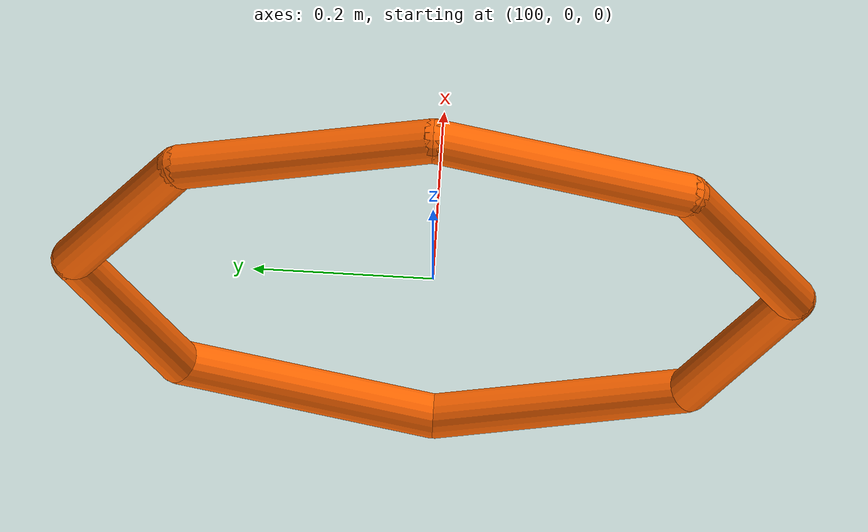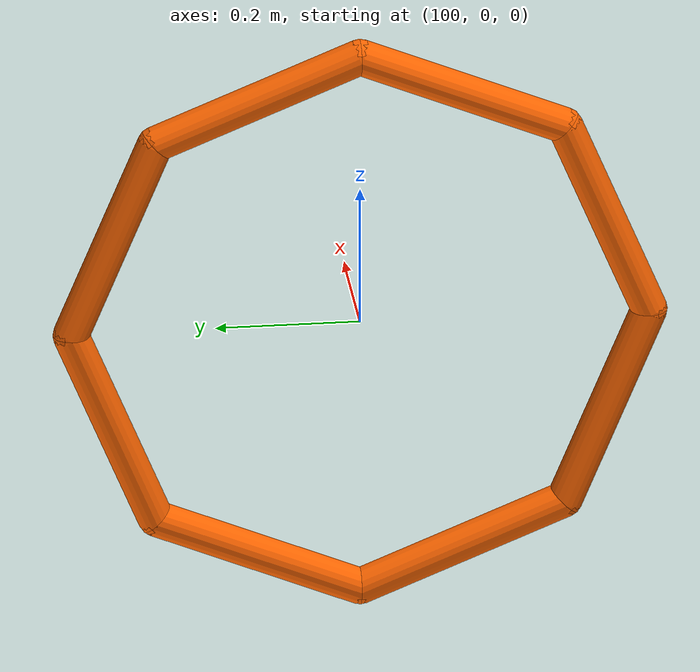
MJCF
<mujoco model="drone_quadrotor">
  <compiler angle="radian" autolimits="true"/>
  <option timestep="0.002" gravity="0 0 -9.81" integrator="RK4"/>

  <default>
    <geom type="capsule" rgba="0.18 0.18 0.22 1" condim="3"/>
    <site size="0.004" rgba="0.95 0.25 0.25 1"/>
    <motor ctrllimited="true" ctrlrange="0 6"/>
  </default>

  <worldbody>
    <light name="sun" pos="0 0 2.5" diffuse="1 1 1"/>
    <geom name="ground" type="plane" size="4 4 0.1" rgba="0.1 0.13 0.16 1"/>
    <camera name="track" mode="trackcom" pos="0 -2.0 1.2" xyaxes="1 0 0 0 0 1"/>

    <body name="gate_0" mocap="true" pos="100 0 0">
      <geom type="capsule" fromto="0 0.4000 0.0000 0 0.2828 0.2828" size="0.025" rgba="1.0 0.4 0.0 1" contype="0" conaffinity="0"/>
      <geom type="capsule" fromto="0 0.2828 0.2828 0 0.0000 0.4000" size="0.025" rgba="1.0 0.4 0.0 1" contype="0" conaffinity="0"/>
      <geom type="capsule" fromto="0 0.0000 0.4000 0 -0.2828 0.2828" size="0.025" rgba="1.0 0.4 0.0 1" contype="0" conaffinity="0"/>
      <geom type="capsule" fromto="0 -0.2828 0.2828 0 -0.4000 0.0000" size="0.025" rgba="1.0 0.4 0.0 1" contype="0" conaffinity="0"/>
      <geom type="capsule" fromto="0 -0.4000 0.0000 0 -0.2828 -0.2828" size="0.025" rgba="1.0 0.4 0.0 1" contype="0" conaffinity="0"/>
      <geom type="capsule" fromto="0 -0.2828 -0.2828 0 0.0000 -0.4000" size="0.025" rgba="1.0 0.4 0.0 1" contype="0" conaffinity="0"/>
      <geom type="capsule" fromto="0 0.0000 -0.4000 0 0.2828 -0.2828" size="0.025" rgba="1.0 0.4 0.0 1" contype="0" conaffinity="0"/>
      <geom type="capsule" fromto="0 0.2828 -0.2828 0 0.4000 0.0000" size="0.025" rgba="1.0 0.4 0.0 1" contype="0" conaffinity="0"/>
    </body>
    <body name="gate_1" mocap="true" pos="100 0 0">
      <geom type="capsule" fromto="0 0.4000 0.0000 0 0.2828 0.2828" size="0.025" rgba="1.0 0.4 0.0 1" contype="0" conaffinity="0"/>
      <geom type="capsule" fromto="0 0.2828 0.2828 0 0.0000 0.4000" size="0.025" rgba="1.0 0.4 0.0 1" contype="0" conaffinity="0"/>
      <geom type="capsule" fromto="0 0.0000 0.4000 0 -0.2828 0.2828" size="0.025" rgba="1.0 0.4 0.0 1" contype="0" conaffinity="0"/>
      <geom type="capsule" fromto="0 -0.2828 0.2828 0 -0.4000 0.0000" size="0.025" rgba="1.0 0.4 0.0 1" contype="0" conaffinity="0"/>
      <geom type="capsule" fromto="0 -0.4000 0.0000 0 -0.2828 -0.2828" size="0.025" rgba="1.0 0.4 0.0 1" contype="0" conaffinity="0"/>
      <geom type="capsule" fromto="0 -0.2828 -0.2828 0 0.0000 -0.4000" size="0.025" rgba="1.0 0.4 0.0 1" contype="0" conaffinity="0"/>
      <geom type="capsule" fromto="0 0.0000 -0.4000 0 0.2828 -0.2828" size="0.025" rgba="1.0 0.4 0.0 1" contype="0" conaffinity="0"/>
      <geom type="capsule" fromto="0 0.2828 -0.2828 0 0.4000 0.0000" size="0.025" rgba="1.0 0.4 0.0 1" contype="0" conaffinity="0"/>
    </body>
    <body name="gate_2" mocap="true" pos="100 0 0">
      <geom type="capsule" fromto="0 0.4000 0.0000 0 0.2828 0.2828" size="0.025" rgba="1.0 0.4 0.0 1" contype="0" conaffinity="0"/>
      <geom type="capsule" fromto="0 0.2828 0.2828 0 0.0000 0.4000" size="0.025" rgba="1.0 0.4 0.0 1" contype="0" conaffinity="0"/>
      <geom type="capsule" fromto="0 0.0000 0.4000 0 -0.2828 0.2828" size="0.025" rgba="1.0 0.4 0.0 1" contype="0" conaffinity="0"/>
      <geom type="capsule" fromto="0 -0.2828 0.2828 0 -0.4000 0.0000" size="0.025" rgba="1.0 0.4 0.0 1" contype="0" conaffinity="0"/>
      <geom type="capsule" fromto="0 -0.4000 0.0000 0 -0.2828 -0.2828" size="0.025" rgba="1.0 0.4 0.0 1" contype="0" conaffinity="0"/>
      <geom type="capsule" fromto="0 -0.2828 -0.2828 0 0.0000 -0.4000" size="0.025" rgba="1.0 0.4 0.0 1" contype="0" conaffinity="0"/>
      <geom type="capsule" fromto="0 0.0000 -0.4000 0 0.2828 -0.2828" size="0.025" rgba="1.0 0.4 0.0 1" contype="0" conaffinity="0"/>
      <geom type="capsule" fromto="0 0.2828 -0.2828 0 0.4000 0.0000" size="0.025" rgba="1.0 0.4 0.0 1" contype="0" conaffinity="0"/>
    </body>
    <body name="gate_3" mocap="true" pos="100 0 0">
      <geom type="capsule" fromto="0 0.4000 0.0000 0 0.2828 0.2828" size="0.025" rgba="1.0 0.4 0.0 1" contype="0" conaffinity="0"/>
      <geom type="capsule" fromto="0 0.2828 0.2828 0 0.0000 0.4000" size="0.025" rgba="1.0 0.4 0.0 1" contype="0" conaffinity="0"/>
      <geom type="capsule" fromto="0 0.0000 0.4000 0 -0.2828 0.2828" size="0.025" rgba="1.0 0.4 0.0 1" contype="0" conaffinity="0"/>
      <geom type="capsule" fromto="0 -0.2828 0.2828 0 -0.4000 0.0000" size="0.025" rgba="1.0 0.4 0.0 1" contype="0" conaffinity="0"/>
      <geom type="capsule" fromto="0 -0.4000 0.0000 0 -0.2828 -0.2828" size="0.025" rgba="1.0 0.4 0.0 1" contype="0" conaffinity="0"/>
      <geom type="capsule" fromto="0 -0.2828 -0.2828 0 0.0000 -0.4000" size="0.025" rgba="1.0 0.4 0.0 1" contype="0" conaffinity="0"/>
      <geom type="capsule" fromto="0 0.0000 -0.4000 0 0.2828 -0.2828" size="0.025" rgba="1.0 0.4 0.0 1" contype="0" conaffinity="0"/>
      <geom type="capsule" fromto="0 0.2828 -0.2828 0 0.4000 0.0000" size="0.025" rgba="1.0 0.4 0.0 1" contype="0" conaffinity="0"/>
    </body>
    <body name="gate_4" mocap="true" pos="100 0 0">
      <geom type="capsule" fromto="0 0.4000 0.0000 0 0.2828 0.2828" size="0.025" rgba="1.0 0.4 0.0 1" contype="0" conaffinity="0"/>
      <geom type="capsule" fromto="0 0.2828 0.2828 0 0.0000 0.4000" size="0.025" rgba="1.0 0.4 0.0 1" contype="0" conaffinity="0"/>
      <geom type="capsule" fromto="0 0.0000 0.4000 0 -0.2828 0.2828" size="0.025" rgba="1.0 0.4 0.0 1" contype="0" conaffinity="0"/>
      <geom type="capsule" fromto="0 -0.2828 0.2828 0 -0.4000 0.0000" size="0.025" rgba="1.0 0.4 0.0 1" contype="0" conaffinity="0"/>
      <geom type="capsule" fromto="0 -0.4000 0.0000 0 -0.2828 -0.2828" size="0.025" rgba="1.0 0.4 0.0 1" contype="0" conaffinity="0"/>
      <geom type="capsule" fromto="0 -0.2828 -0.2828 0 0.0000 -0.4000" size="0.025" rgba="1.0 0.4 0.0 1" contype="0" conaffinity="0"/>
      <geom type="capsule" fromto="0 0.0000 -0.4000 0 0.2828 -0.2828" size="0.025" rgba="1.0 0.4 0.0 1" contype="0" conaffinity="0"/>
      <geom type="capsule" fromto="0 0.2828 -0.2828 0 0.4000 0.0000" size="0.025" rgba="1.0 0.4 0.0 1" contype="0" conaffinity="0"/>
    </body>
    <body name="gate_5" mocap="true" pos="100 0 0">
      <geom type="capsule" fromto="0 0.4000 0.0000 0 0.2828 0.2828" size="0.025" rgba="1.0 0.4 0.0 1" contype="0" conaffinity="0"/>
      <geom type="capsule" fromto="0 0.2828 0.2828 0 0.0000 0.4000" size="0.025" rgba="1.0 0.4 0.0 1" contype="0" conaffinity="0"/>
      <geom type="capsule" fromto="0 0.0000 0.4000 0 -0.2828 0.2828" size="0.025" rgba="1.0 0.4 0.0 1" contype="0" conaffinity="0"/>
      <geom type="capsule" fromto="0 -0.2828 0.2828 0 -0.4000 0.0000" size="0.025" rgba="1.0 0.4 0.0 1" contype="0" conaffinity="0"/>
      <geom type="capsule" fromto="0 -0.4000 0.0000 0 -0.2828 -0.2828" size="0.025" rgba="1.0 0.4 0.0 1" contype="0" conaffinity="0"/>
      <geom type="capsule" fromto="0 -0.2828 -0.2828 0 0.0000 -0.4000" size="0.025" rgba="1.0 0.4 0.0 1" contype="0" conaffinity="0"/>
      <geom type="capsule" fromto="0 0.0000 -0.4000 0 0.2828 -0.2828" size="0.025" rgba="1.0 0.4 0.0 1" contype="0" conaffinity="0"/>
      <geom type="capsule" fromto="0 0.2828 -0.2828 0 0.4000 0.0000" size="0.025" rgba="1.0 0.4 0.0 1" contype="0" conaffinity="0"/>
    </body>
    <body name="gate_6" mocap="true" pos="100 0 0">
      <geom type="capsule" fromto="0 0.4000 0.0000 0 0.2828 0.2828" size="0.025" rgba="1.0 0.4 0.0 1" contype="0" conaffinity="0"/>
      <geom type="capsule" fromto="0 0.2828 0.2828 0 0.0000 0.4000" size="0.025" rgba="1.0 0.4 0.0 1" contype="0" conaffinity="0"/>
      <geom type="capsule" fromto="0 0.0000 0.4000 0 -0.2828 0.2828" size="0.025" rgba="1.0 0.4 0.0 1" contype="0" conaffinity="0"/>
      <geom type="capsule" fromto="0 -0.2828 0.2828 0 -0.4000 0.0000" size="0.025" rgba="1.0 0.4 0.0 1" contype="0" conaffinity="0"/>
      <geom type="capsule" fromto="0 -0.4000 0.0000 0 -0.2828 -0.2828" size="0.025" rgba="1.0 0.4 0.0 1" contype="0" conaffinity="0"/>
      <geom type="capsule" fromto="0 -0.2828 -0.2828 0 0.0000 -0.4000" size="0.025" rgba="1.0 0.4 0.0 1" contype="0" conaffinity="0"/>
      <geom type="capsule" fromto="0 0.0000 -0.4000 0 0.2828 -0.2828" size="0.025" rgba="1.0 0.4 0.0 1" contype="0" conaffinity="0"/>
      <geom type="capsule" fromto="0 0.2828 -0.2828 0 0.4000 0.0000" size="0.025" rgba="1.0 0.4 0.0 1" contype="0" conaffinity="0"/>
    </body>
    <body name="gate_7" mocap="true" pos="100 0 0">
      <geom type="capsule" fromto="0 0.4000 0.0000 0 0.2828 0.2828" size="0.025" rgba="1.0 0.4 0.0 1" contype="0" conaffinity="0"/>
      <geom type="capsule" fromto="0 0.2828 0.2828 0 0.0000 0.4000" size="0.025" rgba="1.0 0.4 0.0 1" contype="0" conaffinity="0"/>
      <geom type="capsule" fromto="0 0.0000 0.4000 0 -0.2828 0.2828" size="0.025" rgba="1.0 0.4 0.0 1" contype="0" conaffinity="0"/>
      <geom type="capsule" fromto="0 -0.2828 0.2828 0 -0.4000 0.0000" size="0.025" rgba="1.0 0.4 0.0 1" contype="0" conaffinity="0"/>
      <geom type="capsule" fromto="0 -0.4000 0.0000 0 -0.2828 -0.2828" size="0.025" rgba="1.0 0.4 0.0 1" contype="0" conaffinity="0"/>
      <geom type="capsule" fromto="0 -0.2828 -0.2828 0 0.0000 -0.4000" size="0.025" rgba="1.0 0.4 0.0 1" contype="0" conaffinity="0"/>
      <geom type="capsule" fromto="0 0.0000 -0.4000 0 0.2828 -0.2828" size="0.025" rgba="1.0 0.4 0.0 1" contype="0" conaffinity="0"/>
      <geom type="capsule" fromto="0 0.2828 -0.2828 0 0.4000 0.0000" size="0.025" rgba="1.0 0.4 0.0 1" contype="0" conaffinity="0"/>
    </body>
    <body name="gate_8" mocap="true" pos="100 0 0">
      <geom type="capsule" fromto="0 0.4000 0.0000 0 0.2828 0.2828" size="0.025" rgba="1.0 0.4 0.0 1" contype="0" conaffinity="0"/>
      <geom type="capsule" fromto="0 0.2828 0.2828 0 0.0000 0.4000" size="0.025" rgba="1.0 0.4 0.0 1" contype="0" conaffinity="0"/>
      <geom type="capsule" fromto="0 0.0000 0.4000 0 -0.2828 0.2828" size="0.025" rgba="1.0 0.4 0.0 1" contype="0" conaffinity="0"/>
      <geom type="capsule" fromto="0 -0.2828 0.2828 0 -0.4000 0.0000" size="0.025" rgba="1.0 0.4 0.0 1" contype="0" conaffinity="0"/>
      <geom type="capsule" fromto="0 -0.4000 0.0000 0 -0.2828 -0.2828" size="0.025" rgba="1.0 0.4 0.0 1" contype="0" conaffinity="0"/>
      <geom type="capsule" fromto="0 -0.2828 -0.2828 0 0.0000 -0.4000" size="0.025" rgba="1.0 0.4 0.0 1" contype="0" conaffinity="0"/>
      <geom type="capsule" fromto="0 0.0000 -0.4000 0 0.2828 -0.2828" size="0.025" rgba="1.0 0.4 0.0 1" contype="0" conaffinity="0"/>
      <geom type="capsule" fromto="0 0.2828 -0.2828 0 0.4000 0.0000" size="0.025" rgba="1.0 0.4 0.0 1" contype="0" conaffinity="0"/>
    </body>
    <body name="gate_9" mocap="true" pos="100 0 0">
      <geom type="capsule" fromto="0 0.4000 0.0000 0 0.2828 0.2828" size="0.025" rgba="1.0 0.4 0.0 1" contype="0" conaffinity="0"/>
      <geom type="capsule" fromto="0 0.2828 0.2828 0 0.0000 0.4000" size="0.025" rgba="1.0 0.4 0.0 1" contype="0" conaffinity="0"/>
      <geom type="capsule" fromto="0 0.0000 0.4000 0 -0.2828 0.2828" size="0.025" rgba="1.0 0.4 0.0 1" contype="0" conaffinity="0"/>
      <geom type="capsule" fromto="0 -0.2828 0.2828 0 -0.4000 0.0000" size="0.025" rgba="1.0 0.4 0.0 1" contype="0" conaffinity="0"/>
      <geom type="capsule" fromto="0 -0.4000 0.0000 0 -0.2828 -0.2828" size="0.025" rgba="1.0 0.4 0.0 1" contype="0" conaffinity="0"/>
      <geom type="capsule" fromto="0 -0.2828 -0.2828 0 0.0000 -0.4000" size="0.025" rgba="1.0 0.4 0.0 1" contype="0" conaffinity="0"/>
      <geom type="capsule" fromto="0 0.0000 -0.4000 0 0.2828 -0.2828" size="0.025" rgba="1.0 0.4 0.0 1" contype="0" conaffinity="0"/>
      <geom type="capsule" fromto="0 0.2828 -0.2828 0 0.4000 0.0000" size="0.025" rgba="1.0 0.4 0.0 1" contype="0" conaffinity="0"/>
    </body>

    <body name="drone" pos="0 0 0.35">
      <freejoint name="drone_free"/>
      <inertial pos="0 0 0" mass="1.0" diaginertia="0.01 0.01 0.02"/>

      <geom name="body" type="box" size="0.045 0.045 0.014" rgba="0.23 0.23 0.27 1"/>
      <geom name="arm_1" fromto="0 0 0 0.11 0.11 0" size="0.006"/>
      <geom name="arm_2" fromto="0 0 0 -0.11 0.11 0" size="0.006"/>
      <geom name="arm_3" fromto="0 0 0 -0.11 -0.11 0" size="0.006"/>
      <geom name="arm_4" fromto="0 0 0 0.11 -0.11 0" size="0.006"/>

      <geom name="prop_1" type="cylinder" pos="0.11 0.11 0" size="0.03 0.002" rgba="0.7 0.1 0.1 0.9"/>
      <geom name="prop_2" type="cylinder" pos="-0.11 0.11 0" size="0.03 0.002" rgba="0.1 0.7 0.1 0.9"/>
      <geom name="prop_3" type="cylinder" pos="-0.11 -0.11 0" size="0.03 0.002" rgba="0.1 0.1 0.7 0.9"/>
      <geom name="prop_4" type="cylinder" pos="0.11 -0.11 0" size="0.03 0.002" rgba="0.7 0.7 0.1 0.9"/>

      <site name="motor_1" pos="0.11 0.11 0"/>
      <site name="motor_2" pos="-0.11 0.11 0"/>
      <site name="motor_3" pos="-0.11 -0.11 0"/>
      <site name="motor_4" pos="0.11 -0.11 0"/>
      <site name="imu" pos="0 0 0"/>
      <!-- Forward-facing camera for Phase 2 perception.
           xyaxes: camera-x = body -Y (right), camera-y = body +Z (up) → looks along body +X (forward). -->
      <camera name="drone_cam" pos="0.05 0 0" xyaxes="0 -1 0 0 0 1" fovy="80"/>
    </body>
  </worldbody>

  <actuator>
    <motor name="motor_1" site="motor_1" gear="0 0 1 0 0 0.04"/>
    <motor name="motor_2" site="motor_2" gear="0 0 1 0 0 -0.04"/>
    <motor name="motor_3" site="motor_3" gear="0 0 1 0 0 0.04"/>
    <motor name="motor_4" site="motor_4" gear="0 0 1 0 0 -0.04"/>
  </actuator>

  <sensor>
    <gyro site="imu"/>
    <accelerometer site="imu"/>
    <framequat objtype="body" objname="drone"/>
    <framepos objtype="body" objname="drone"/>
    <framelinvel objtype="body" objname="drone"/>
    <frameangvel objtype="body" objname="drone"/>
  </sensor>
</mujoco>
